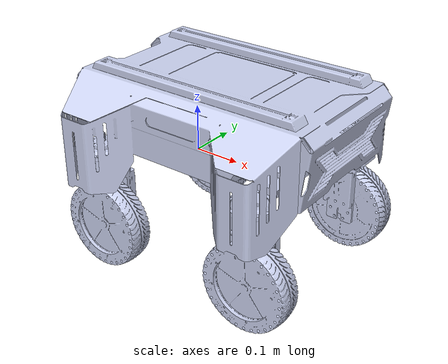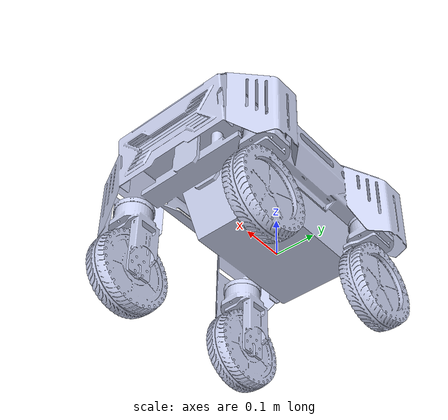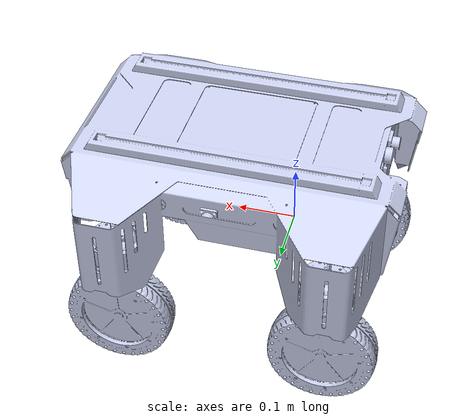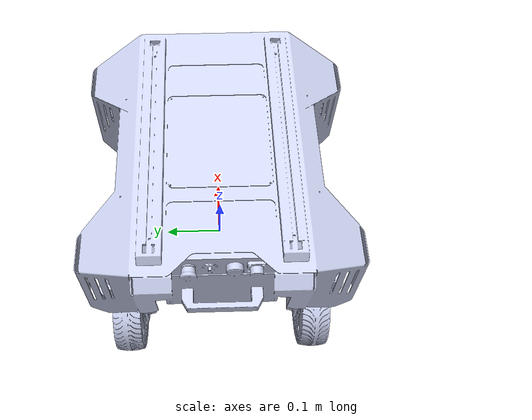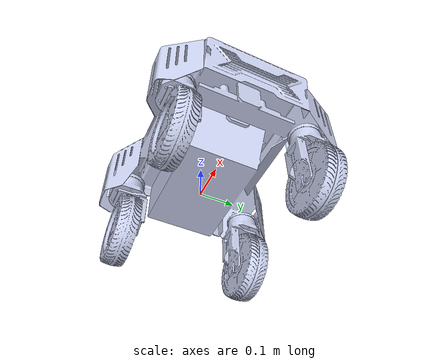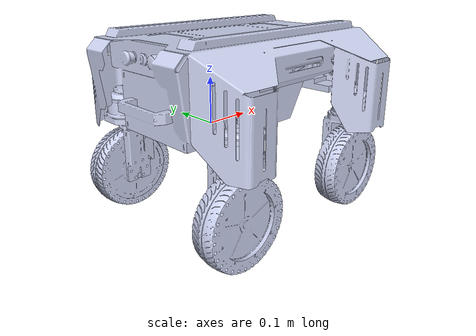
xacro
<?xml version="1.0" encoding="utf-8"?>
<robot name="ranger_mini" xmlns:xacro="http://ros.org/wiki/xacro">
  <xacro:include filename="$(find ranger_mini_gazebo)/xacro/ranger_mini.gazebo.xacro"/>
  <link
    name="base_link">
    <inertial>
      <origin
        xyz="0.0562591525803034 5.21904025701792E-05 0.108402855968814"
        rpy="0 0 0" />
      <mass
        value="17.8446713847014" />
      <inertia
        ixx="0.114563750887795"
        ixy="1.00505607229726E-06"
        ixz="-0.00308015585160256"
        iyy="0.25640701981465"
        iyz="-1.26769813175445E-06"
        izz="0.33939943437936" />
    </inertial>
    <visual>
      <origin
        xyz="0 0 0"
        rpy="0 0 0" />
      <geometry>
        <mesh
          filename="package://ranger_mini/meshes/base_link.STL" />
      </geometry>
      <material
        name="">
        <color
          rgba="0.792156862745098 0.819607843137255 0.933333333333333 1" />
      </material>
    </visual>
    <collision>
      <origin
        xyz="0 0 0"
        rpy="0 0 0" />
      <geometry>
        <mesh
          filename="package://ranger_mini/meshes/base_link.STL" />
      </geometry>
    </collision>
  </link>
  <link
    name="front_left_steering_link">
    <inertial>
      <origin
        xyz="-0.0078125 1.2678E-05 0.060941"
        rpy="0 0 0" />
      <mass
        value="0.30421" />
      <inertia
        ixx="0.00022406"
        ixy="-5.3036E-09"
        ixz="-1.2289E-08"
        iyy="0.00021285"
        iyz="-2.5969E-08"
        izz="0.00027948" />
    </inertial>
    <visual>
      <origin
        xyz="0 0 0"
        rpy="0 0 0" />
      <geometry>
        <mesh
          filename="package://ranger_mini/meshes/front_left_steering_link.STL" />
      </geometry>
      <material
        name="">
        <color
          rgba="0.79216 0.81961 0.93333 1" />
      </material>
    </visual>
    <collision>
      <origin
        xyz="0 0 0"
        rpy="0 0 0" />
      <geometry>
        <mesh
          filename="package://ranger_mini/meshes/front_left_steering_link.STL" />
      </geometry>
    </collision>
  </link>
  <joint
    name="front_left_steering_joint"
    type="revolute">
    <origin
      xyz="0.26366 0.18001 0.0557"
      rpy="3.1416 0 1.5708" />
    <parent
      link="base_link" />
    <child
      link="front_left_steering_link" />
    <axis
      xyz="0 0 1" />
    <limit effort="5" velocity="6.28"  lower="-2.1" upper="2.1" />
  </joint>
  <link
    name="ffl_wheel_link">
    <inertial>
      <origin
        xyz="-0.0016559 2.498E-05 -1.1185E-05"
        rpy="0 0 0" />
      <mass
        value="1.1363" />
      <inertia
        ixx="0.0049366"
        ixy="-9.2744E-07"
        ixz="2.0492E-07"
        iyy="0.002578"
        iyz="9.052E-08"
        izz="0.0025791" />
    </inertial>
    <visual>
      <origin
        xyz="0 0 0"
        rpy="0 0 0" />
      <geometry>
        <mesh
          filename="package://ranger_mini/meshes/ffl_wheel_link.STL" />
      </geometry>
      <material
        name="">
        <color
          rgba="0.79216 0.81961 0.93333 1" />
      </material>
    </visual>
    <collision>
      <origin
        xyz="0 0 0"
        rpy="0 0 0" />
      <geometry>
        <mesh
          filename="package://ranger_mini/meshes/ffl_wheel_link.STL" />
      </geometry>
    </collision>
  </link>
  <joint
    name="ffl_wheel_joint"
    type="continuous">
    <origin
      xyz="-0.0012329 0.00099823 0.179"
      rpy="0 0 0" />
    <parent
      link="front_left_steering_link" />
    <child
      link="ffl_wheel_link" />
    <axis
      xyz="1 0 0" />
    <limit effort="1.5" velocity="20"/>
  </joint>
  <link
    name="front_right_steering_link">
    <inertial>
      <origin
        xyz="0.0078149 5.813E-06 0.060941"
        rpy="0 0 0" />
      <mass
        value="0.30422" />
      <inertia
        ixx="0.00022406"
        ixy="-6.6817E-09"
        ixz="7.4999E-08"
        iyy="0.00021285"
        iyz="-1.9079E-08"
        izz="0.00027948" />
    </inertial>
    <visual>
      <origin
        xyz="0 0 0"
        rpy="0 0 0" />
      <geometry>
        <mesh
          filename="package://ranger_mini/meshes/front_right_steering_link.STL" />
      </geometry>
      <material
        name="">
        <color
          rgba="0.79216 0.81961 0.93333 1" />
      </material>
    </visual>
    <collision>
      <origin
        xyz="0 0 0"
        rpy="0 0 0" />
      <geometry>
        <mesh
          filename="package://ranger_mini/meshes/front_right_steering_link.STL" />
      </geometry>
    </collision>
  </link>
  <joint
    name="front_right_steering_joint"
    type="revolute">
    <origin
      xyz="0.26366 -0.18 0.0557"
      rpy="3.1416 0 1.5708" />
    <parent
      link="base_link" />
    <child
      link="front_right_steering_link" />
    <axis
      xyz="0 0 1" />
    <limit effort="5" velocity="6.28"  lower="-2.1" upper="2.1" />
  </joint>
  <link
    name="ffr_wheel_link">
    <inertial>
      <origin
        xyz="0.0016472 -1.6563E-05 2.7857E-05"
        rpy="0 0 0" />
      <mass
        value="1.1364" />
      <inertia
        ixx="0.0049371"
        ixy="-9.2722E-07"
        ixz="-1.9886E-07"
        iyy="0.0025793"
        iyz="-6.7378E-08"
        izz="0.0025805" />
    </inertial>
    <visual>
      <origin
        xyz="0 0 0"
        rpy="0 0 0" />
      <geometry>
        <mesh
          filename="package://ranger_mini/meshes/ffr_wheel_link.STL" />
      </geometry>
      <material
        name="">
        <color
          rgba="0.79216 0.81961 0.93333 1" />
      </material>
    </visual>
    <collision>
      <origin
        xyz="0 0 0"
        rpy="0 0 0" />
      <geometry>
        <mesh
          filename="package://ranger_mini/meshes/ffr_wheel_link.STL" />
      </geometry>
    </collision>
  </link>
  <joint
    name="ffr_wheel_joint"
    type="continuous">
    <origin
      xyz="0.0012238 0 0.179"
      rpy="0 0 0" />
    <parent
      link="front_right_steering_link" />
    <child
      link="ffr_wheel_link" />
    <axis
      xyz="1 0 0" />
    <limit effort="1.5" velocity="20"/>
  </joint>
  <link
    name="rear_left_steering_link">
    <inertial>
      <origin
        xyz="-0.0079979 9.6737E-06 0.062261"
        rpy="0 0 0" />
      <mass
        value="0.2968" />
      <inertia
        ixx="0.00021788"
        ixy="-5.0547E-08"
        ixz="-7.6105E-09"
        iyy="0.00020665"
        iyz="1.9139E-08"
        izz="0.00026712" />
    </inertial>
    <visual>
      <origin
        xyz="0 0 0"
        rpy="0 0 0" />
      <geometry>
        <mesh
          filename="package://ranger_mini/meshes/rear_left_steering_link.STL" />
      </geometry>
      <material
        name="">
        <color
          rgba="0.79216 0.81961 0.93333 1" />
      </material>
    </visual>
    <collision>
      <origin
        xyz="0 0 0"
        rpy="0 0 0" />
      <geometry>
        <mesh
          filename="package://ranger_mini/meshes/rear_left_steering_link.STL" />
      </geometry>
    </collision>
  </link>
  <joint
    name="rear_left_steering_joint"
    type="revolute">
    <origin
      xyz="-0.094631 0.18001 0.0557"
      rpy="3.1416 0 1.5708" />
    <parent
      link="base_link" />
    <child
      link="rear_left_steering_link" />
    <axis
      xyz="0 0 1" />
    <limit effort="5" velocity="6.28"  lower="-2.1" upper="2.1" />
  </joint>
  <link
    name="rfl_wheel_link">
    <inertial>
      <origin
        xyz="-0.0016588 2.035E-05 8.7225E-06"
        rpy="0 0 0" />
      <mass
        value="1.1361" />
      <inertia
        ixx="0.0049373"
        ixy="-9.2167E-07"
        ixz="1.9763E-07"
        iyy="0.0025788"
        iyz="3.731E-07"
        izz="0.002579" />
    </inertial>
    <visual>
      <origin
        xyz="0 0 0"
        rpy="0 0 0" />
      <geometry>
        <mesh
          filename="package://ranger_mini/meshes/rfl_wheel_link.STL" />
      </geometry>
      <material
        name="">
        <color
          rgba="0.79216 0.81961 0.93333 1" />
      </material>
    </visual>
    <collision>
      <origin
        xyz="0 0 0"
        rpy="0 0 0" />
      <geometry>
        <mesh
          filename="package://ranger_mini/meshes/rfl_wheel_link.STL" />
      </geometry>
    </collision>
  </link>
  <joint
    name="rfl_wheel_joint"
    type="continuous">
    <origin
      xyz="-0.0012297 0 0.179"
      rpy="0 0 0" />
    <parent
      link="rear_left_steering_link" />
    <child
      link="rfl_wheel_link" />
    <axis
      xyz="1 0 0" />
    <limit effort="1.5" velocity="20"/>
  </joint>
  <link
    name="rear_right_steering_link">
    <inertial>
      <origin
        xyz="0.0077929 0.00010875 0.060976"
        rpy="0 0 0" />
      <mass
        value="0.30421" />
      <inertia
        ixx="0.00022406"
        ixy="1.5622E-07"
        ixz="7.4851E-09"
        iyy="0.00021285"
        iyz="1.9677E-08"
        izz="0.00027948" />
    </inertial>
    <visual>
      <origin
        xyz="0 0 0"
        rpy="0 0 0" />
      <geometry>
        <mesh
          filename="package://ranger_mini/meshes/rear_right_steering_link.STL" />
      </geometry>
      <material
        name="">
        <color
          rgba="0.79216 0.81961 0.93333 1" />
      </material>
    </visual>
    <collision>
      <origin
        xyz="0 0 0"
        rpy="0 0 0" />
      <geometry>
        <mesh
          filename="package://ranger_mini/meshes/rear_right_steering_link.STL" />
      </geometry>
    </collision>
  </link>
  <joint
    name="rear_right_steering_joint"
    type="revolute">
    <origin
      xyz="-0.09463 -0.17999 0.0557"
      rpy="3.1416 0 1.5708" />
    <parent
      link="base_link" />
    <child
      link="rear_right_steering_link" />
    <axis
      xyz="0 0 1" />
    <limit effort="5" velocity="6.28"  lower="-2.1" upper="2.1" />
  </joint>
  <link
    name="rfr_wheel_link">
    <inertial>
      <origin
        xyz="0.0016568 3.1298E-06 9.7006E-06"
        rpy="0 0 0" />
      <mass
        value="1.1361" />
      <inertia
        ixx="0.0049373"
        ixy="3.3232E-05"
        ixz="-1.942E-07"
        iyy="0.0025802"
        iyz="-1.2121E-07"
        izz="0.0025792" />
    </inertial>
    <visual>
      <origin
        xyz="0 0 0"
        rpy="0 0 0" />
      <geometry>
        <mesh
          filename="package://ranger_mini/meshes/rfr_wheel_link.STL" />
      </geometry>
      <material
        name="">
        <color
          rgba="0.79216 0.81961 0.93333 1" />
      </material>
    </visual>
    <collision>
      <origin
        xyz="0 0 0"
        rpy="0 0 0" />
      <geometry>
        <mesh
          filename="package://ranger_mini/meshes/rfr_wheel_link.STL" />
      </geometry>
    </collision>
  </link>
  <joint
    name="rfr_wheel_joint"
    type="continuous">
    <origin
      xyz="0.0012149 0 0.179"
      rpy="0 0 0" />
    <parent
      link="rear_right_steering_link" />
    <child
      link="rfr_wheel_link" />
    <axis
      xyz="1 0 0" />
      <limit effort="1.5" velocity="20"/>
  </joint>

	<transmission name="front_left_steering_trans">
      <type>transmission_interface/SimpleTransmission</type>
      <joint name="front_left_steering_joint">
		<hardwareInterface>hardware_interface/PositionJointInterface</hardwareInterface>
      </joint>
	  <actuator name="front_left_steering_motor">
		<hardwareInterface>hardware_interface/PositionJointInterface</hardwareInterface>
		<mechanicalReduction>30</mechanicalReduction>
      </actuator>
	</transmission>

	<transmission name="front_right_steering_trans">
      <type>transmission_interface/SimpleTransmission</type>
      <joint name="front_right_steering_joint">
		<hardwareInterface>hardware_interface/PositionJointInterface</hardwareInterface>
      </joint>
	  <actuator name="front_right_steering_motor">
		<hardwareInterface>hardware_interface/PositionJointInterface</hardwareInterface>
		<mechanicalReduction>30</mechanicalReduction>
      </actuator>
	</transmission>

  	<transmission name="rear_left_steering_trans">
      <type>transmission_interface/SimpleTransmission</type>
      <joint name="rear_left_steering_joint">
		<hardwareInterface>hardware_interface/PositionJointInterface</hardwareInterface>
      </joint>
	  <actuator name="rear_left_steering_motor">
		<hardwareInterface>hardware_interface/PositionJointInterface</hardwareInterface>
		<mechanicalReduction>30</mechanicalReduction>
      </actuator>
	</transmission>

  	<transmission name="rear_right_steering_trans">
      <type>transmission_interface/SimpleTransmission</type>
      <joint name="rear_right_steering_joint">
		<hardwareInterface>hardware_interface/PositionJointInterface</hardwareInterface>
      </joint>
	  <actuator name="rear_right_steering_motor">
		<hardwareInterface>hardware_interface/PositionJointInterface</hardwareInterface>
		<mechanicalReduction>30</mechanicalReduction>
      </actuator>
	</transmission>

  	<transmission name="ffl_wheel_trans">
      <type>transmission_interface/SimpleTransmission</type>
      <joint name="ffl_wheel_joint">
		<hardwareInterface>hardware_interface/VelocityJointInterface</hardwareInterface>
      </joint>
	  <actuator name="ffl_wheel_motor">
		<hardwareInterface>hardware_interface/VelocityJointInterface</hardwareInterface>
		<mechanicalReduction>1</mechanicalReduction>
      </actuator>
	</transmission>

    	<transmission name="ffr_wheel_trans">
      <type>transmission_interface/SimpleTransmission</type>
      <joint name="ffr_wheel_joint">
		<hardwareInterface>hardware_interface/VelocityJointInterface</hardwareInterface>
      </joint>
	  <actuator name="ffr_wheel_motor">
		<hardwareInterface>hardware_interface/VelocityJointInterface</hardwareInterface>
		<mechanicalReduction>1</mechanicalReduction>
      </actuator>
	</transmission>

    	<transmission name="rfl_wheel_trans">
      <type>transmission_interface/SimpleTransmission</type>
      <joint name="rfl_wheel_joint">
		<hardwareInterface>hardware_interface/VelocityJointInterface</hardwareInterface>
      </joint>
	  <actuator name="rfl_wheel_motor">
		<hardwareInterface>hardware_interface/VelocityJointInterface</hardwareInterface>
		<mechanicalReduction>1</mechanicalReduction>
      </actuator>
	</transmission>

    	<transmission name="rfr_wheel_trans">
      <type>transmission_interface/SimpleTransmission</type>
      <joint name="rfr_wheel_joint">
		<hardwareInterface>hardware_interface/VelocityJointInterface</hardwareInterface>
      </joint>
	  <actuator name="rfr_wheel_motor">
		<hardwareInterface>hardware_interface/VelocityJointInterface</hardwareInterface>
		<mechanicalReduction>1</mechanicalReduction>
      </actuator>
	</transmission>

  <gazebo>
    <plugin name="gazebo_ros_control" filename="libgazebo_ros_control.so">
    </plugin>
  </gazebo>

</robot>
